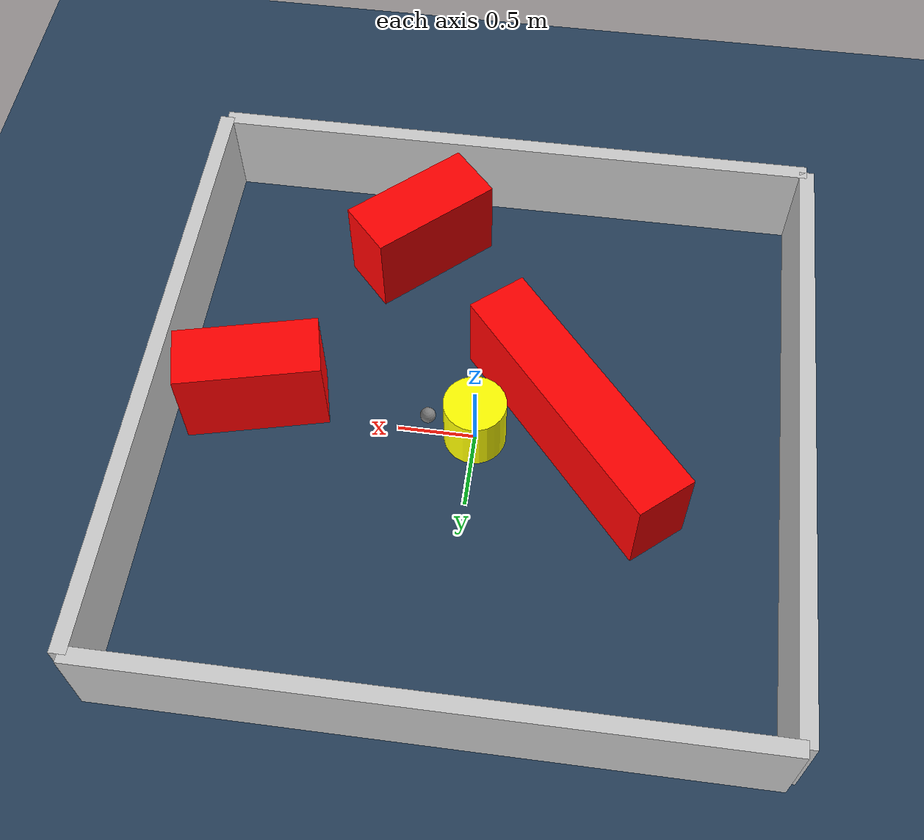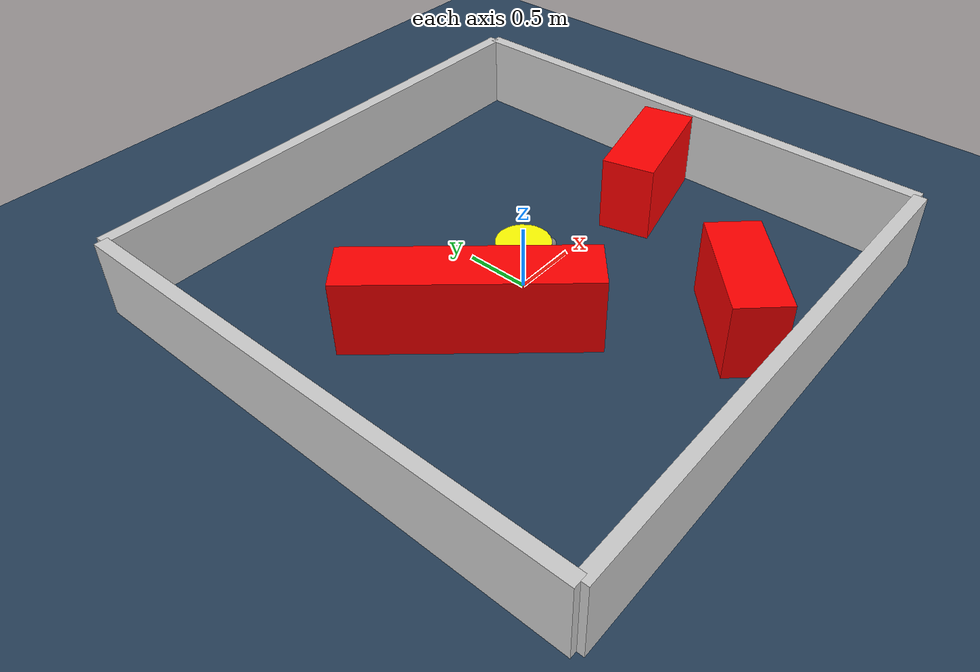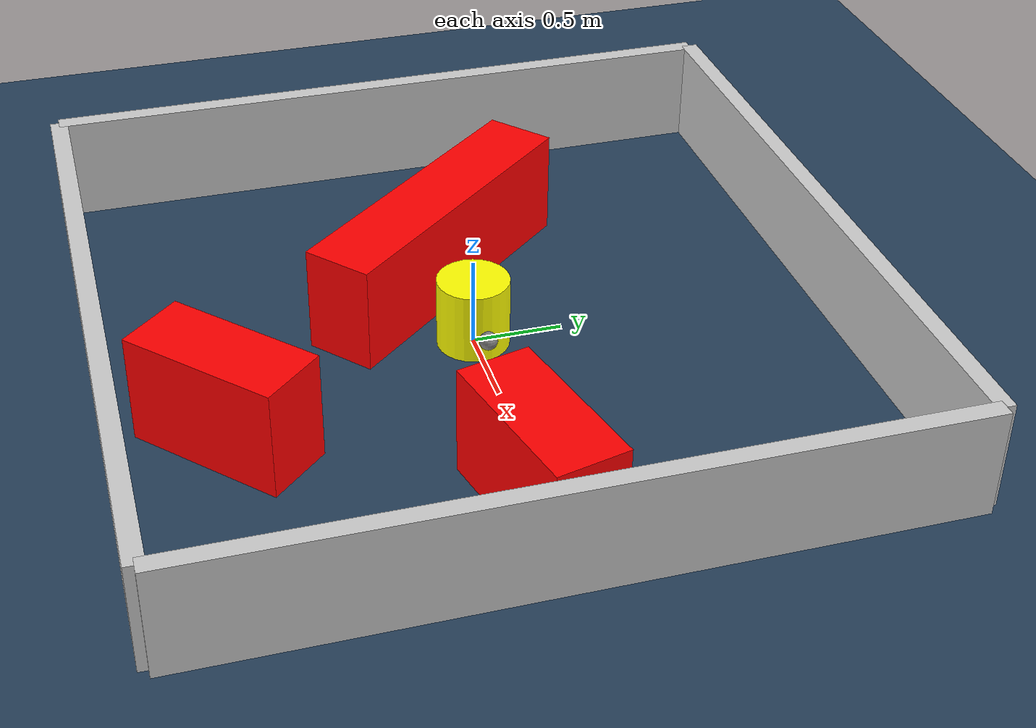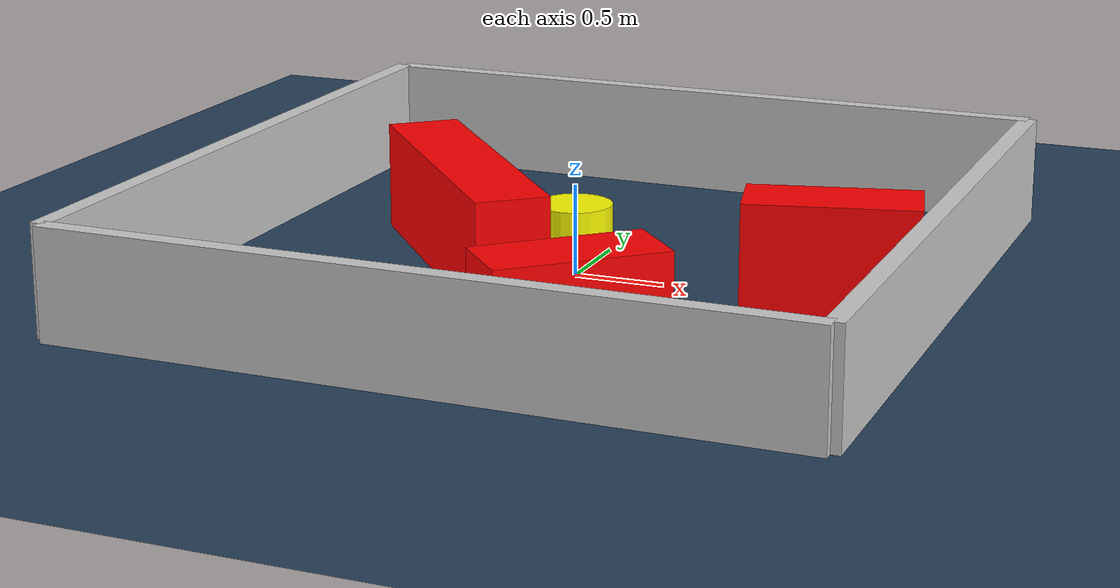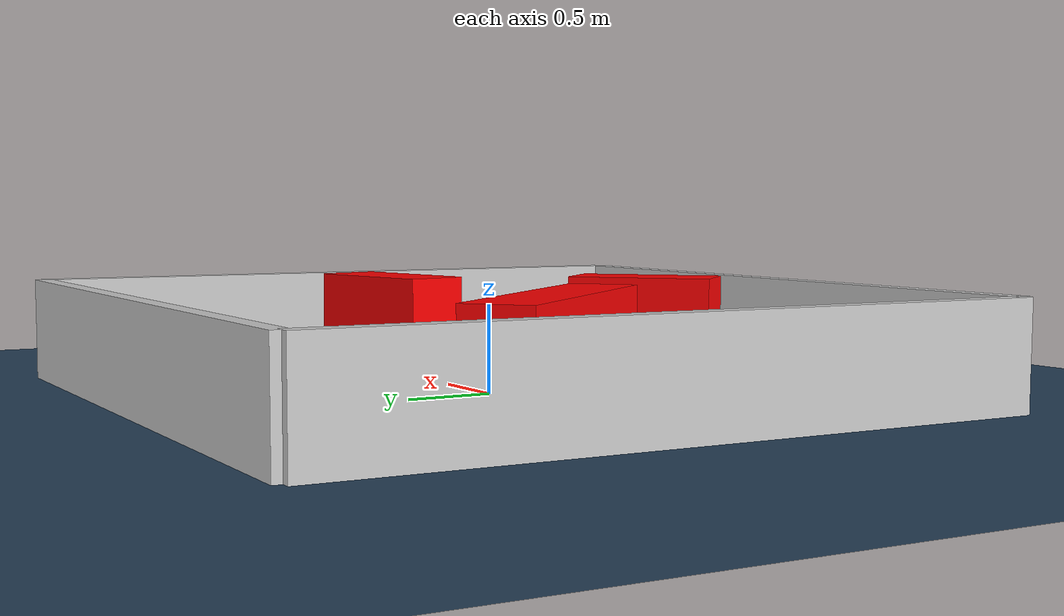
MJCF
<?xml version="1.0" ?>
<mujoco model="generated_environment">
  <option timestep="0.01" integrator="RK4" cone="elliptic"/>
  <default>
    <geom density="1"/>
  </default>
  <asset>
    <texture builtin="gradient" height="3072" rgb1="0.3 0.5 0.7" rgb2="0 0 0" type="skybox" width="512"/>
    <texture builtin="checker" height="300" mark="edge" markrgb="0.8 0.8 0.8" name="groundplane" rgb1="0.2 0.3 0.4" rgb2="0.1 0.2 0.3" type="2d" width="300"/>
    <material name="groundplane" reflectance="0.2" texrepeat="5 5" texture="groundplane" texuniform="true"/>
    <material name="robot" rgba="0.0 1.0 0.0 1"/>
  </asset>
  <worldbody>
    <light dir="0 0 -1" directional="true" pos="0 0 1.5"/>
    <geom condim="4" friction="1.0 0.005 0.001" material="groundplane" name="floor" size="0 0 0.05" type="plane"/>
    <body name="walls">
      <geom name="wall_1" condim="4" pos="-2.0 0.0 0.3" rgba="0.800000011920929 0.800000011920929 0.800000011920929 1.0" size="0.05 2.0 0.3" type="box"/>
      <geom name="wall_2" condim="4" pos="2.0 0.0 0.3" rgba="0.800000011920929 0.800000011920929 0.800000011920929 1.0" size="0.05 2.0 0.3" type="box"/>
      <geom name="wall_3" condim="4" pos="0.0 -2.0 0.3" rgba="0.800000011920929 0.800000011920929 0.800000011920929 1.0" size="2.0 0.05 0.3" type="box"/>
      <geom name="wall_4" condim="4" pos="0.0 2.0 0.3" rgba="0.800000011920929 0.800000011920929 0.800000011920929 1.0" size="2.0 0.05 0.3" type="box"/>
    </body>
    <body name="robot">
      <joint name="joint_x" type="slide" pos="0 0 0" axis="1 0 0"/>
      <joint name="joint_y" type="slide" pos="0 0 0" axis="0 1 0"/>
      <geom name="robot" type="sphere" pos="0.3 0.0 0.2" size="0.05" mass="5." friction="1.0 0.005 0.0001" condim="4" rgba="0.5 0.5 0.5 1.0"/>
      <site name="sensor_ball"/>
    </body>
    <body name="obstacle_movable_1">
      <geom name="obstacle_movable_1" condim="4" pos="0.0 0.0 0.2" euler="0 0 0.0" friction="1.0 0.005 0.001" rgba="1.0 1.0 0.0 1.0" size="0.2 0.2 0.0" type="cylinder" mass="0.1"/>
      <joint type="free"/>
    </body>
    <body name="obstacle_2_static">
      <geom name="obstacle_2_static" condim="4" pos="0.5541311077203361 -1.4267146047150236 0.3" euler="0 0 222.57093093793742" friction="1.0 0.005 0.001" rgba="1 0 0 1" size="0.4473409219908374 0.2 0.3" type="box"/>
    </body>
    <body name="obstacle_3_static">
      <geom name="obstacle_3_static" condim="4" pos="-0.6208791516856008 -0.053246616212060394 0.3" euler="0 0 130.58148913696917" friction="1.0 0.005 0.001" rgba="1 0 0 1" size="0.8918523740939635 0.2 0.3" type="box"/>
    </body>
    <body name="obstacle_4_static">
      <geom name="obstacle_4_static" condim="4" pos="1.4378298427820808 -0.07160214559741962 0.3" euler="0 0 13.711068042210162" friction="1.0 0.005 0.001" rgba="1 0 0 1" size="0.4561903339095915 0.2 0.3" type="box"/>
    </body>
  </worldbody>
  <actuator>
    <motor name="actuator_x" joint="joint_x" gear="1" ctrlrange="-1 1"/>
    <motor name="actuator_y" joint="joint_y" gear="1" ctrlrange="-1 1"/>
  </actuator>
</mujoco>
